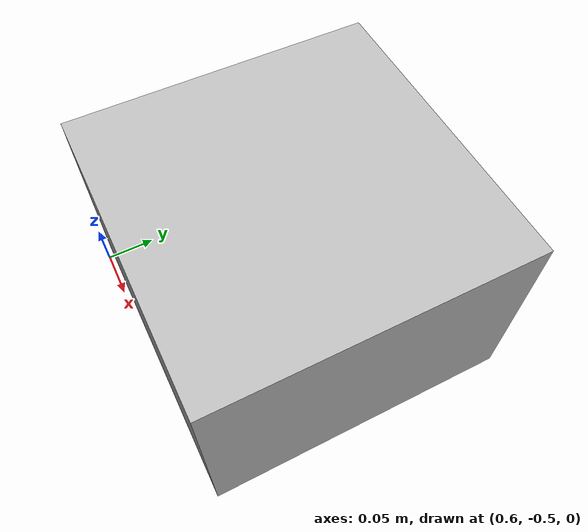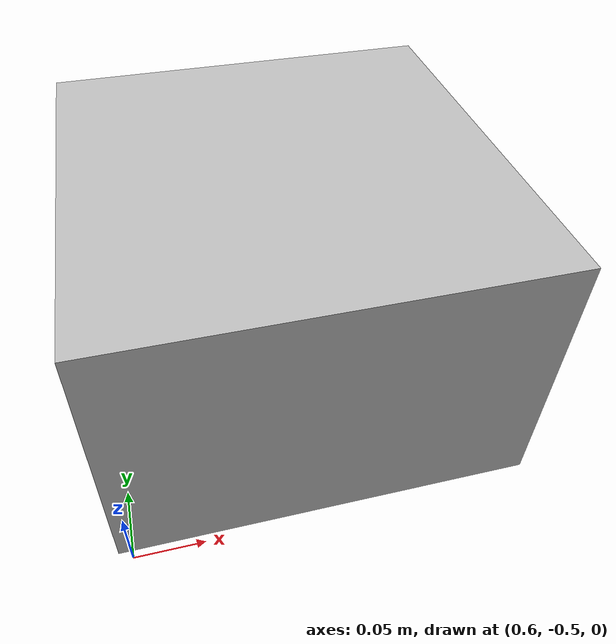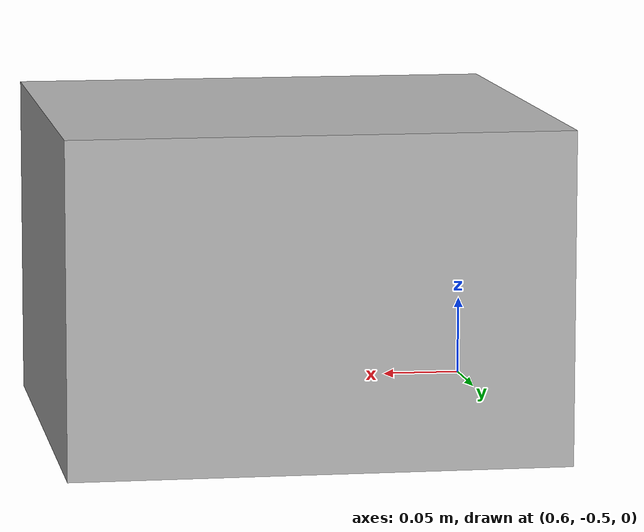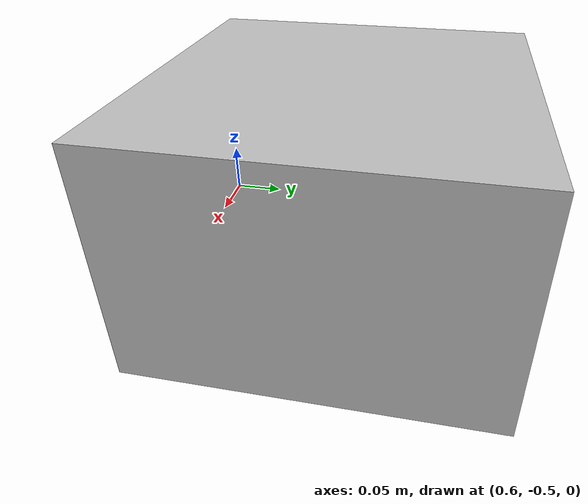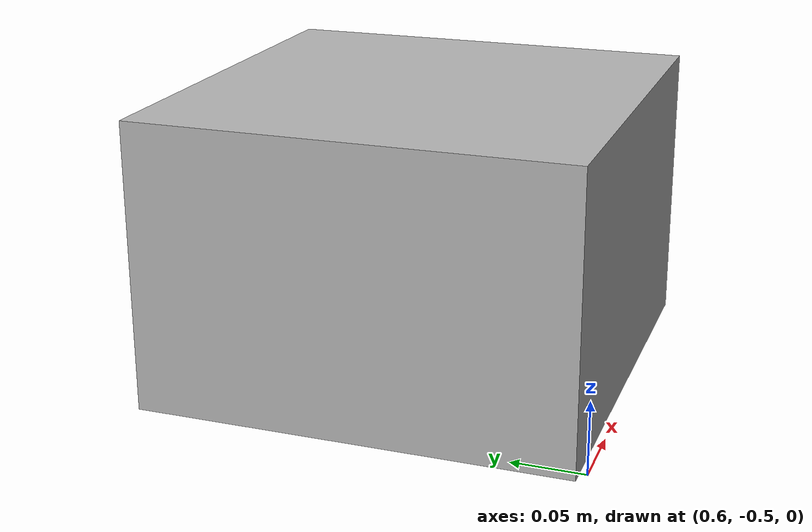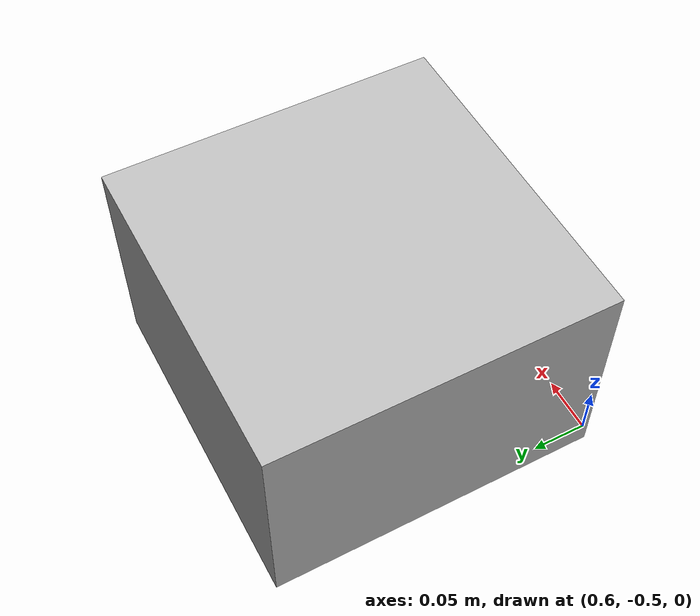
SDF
<?xml version="1.0"?>
<sdf version="1.7">
  <model name="table">
    <link name="table">
      <visual name="table_visual">
        <pose>0.74029686 -0.344702 0.1 0 0 0</pose>
        <geometry>
          <box>
            <size>0.3 0.3 0.2</size>
          </box>
        </geometry>
      </visual>
      <collision name="table_collision">
        <pose>0.74029686 -0.344702 0.1 0 0 0</pose>
        <geometry>
          <box>
            <size>0.3 0.3 0.2</size>
          </box>
        </geometry>
      </collision>
    </link>
  </model>
</sdf>
